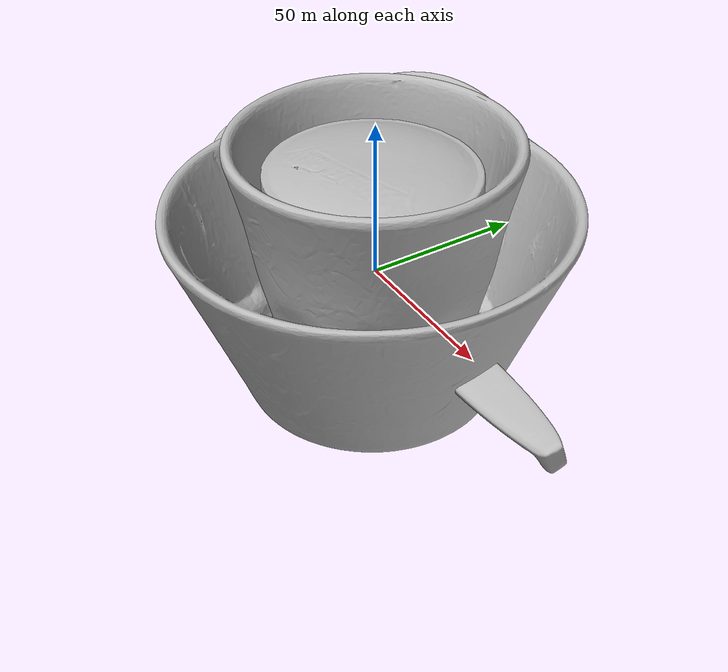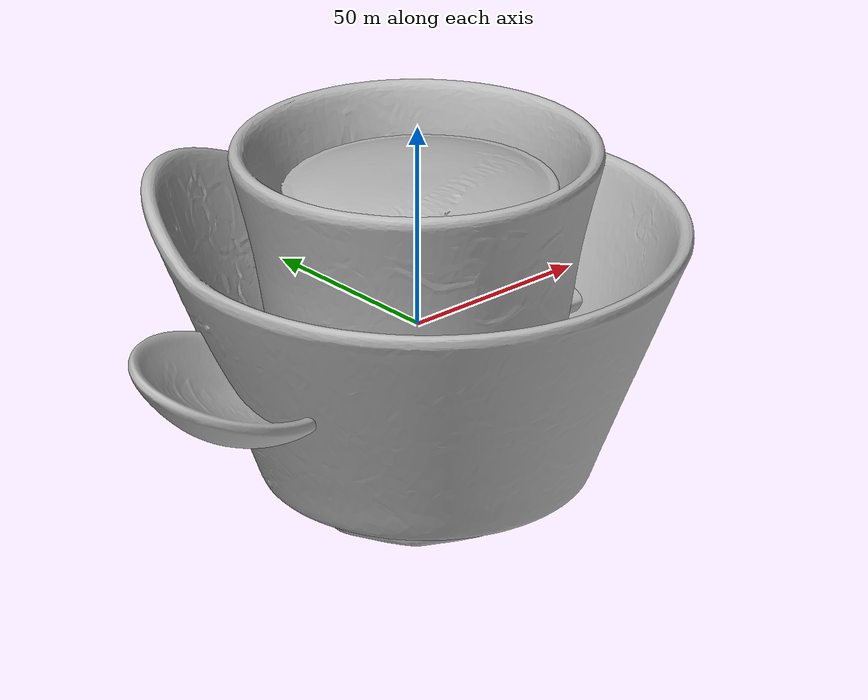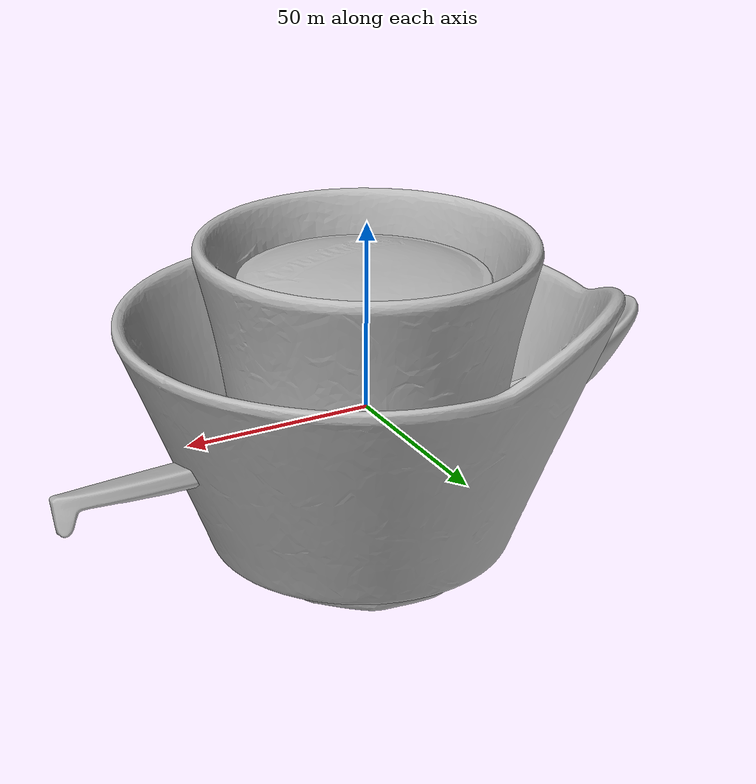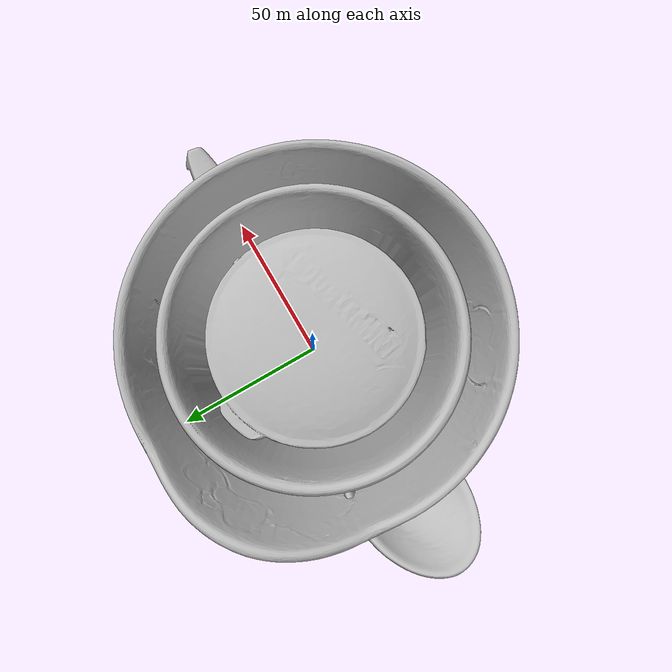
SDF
<sdf version="1.4">
 <world name="default">
  <light name="light1" type="point">
   <pose>0 0 1 0 0 0</pose>
   <diffuse>3 3 3 1</diffuse>
   <specular>3 3 3 1</specular>
  </light>
  <light name="light2" type="point">
   <pose>0 0.5 2 0 0 0</pose>
   <diffuse>1 1 1 1</diffuse>
   <specular>1 1 1 1</specular>
  </light>
  <light name="light3" type="point">
   <pose>0 0.5 2 0 0 0</pose>
   <diffuse>3 3 3 1</diffuse>
   <specular>3 3 3 1</specular>
  </light>
  <scene><ambient>0.7 0.7 0.7</ambient></scene>
  <model name="bottle1">
   <link name="link_bottle1">
    <collision name="default">
     <geometry>
      <mesh><uri>model://green_arrow/collision_meshes/collision.obj</uri><scale>1.0 1.0 1.0</scale></mesh>
     </geometry>
     <surface>
      <friction><ode><mu>0.5</mu><mu2>0.5</mu2></ode></friction>
      <contact><ode><max_vel>0</max_vel><min_depth>0.0001</min_depth><kp>1e8</kp></ode></contact>
     </surface>
    </collision>
    <visual name="default">
     <geometry>
      <mesh><uri>model://green_arrow/visual_meshes/visual.dae</uri><scale>1.0 1.0 1.0</scale></mesh>
     </geometry>
    </visual>
    <inertial>
     <mass>0.2764224410057068</mass>
     <pose>0.0005358477937988937 -0.0008270691032521427 0.002210969105362892 -0.06332196008274972 0.012988210902137025 0.674142157837799</pose>
     <inertia>
      <ixx>0.00020051825</ixx>
      <iyy>0.00020021446</iyy>
      <izz>0.00012947427</izz>
      <ixy>0</ixy>
      <ixz>0</ixz>
      <iyz>0</iyz>
     </inertia>
    </inertial>
   </link>
   <pose>0.07808393239974976 0.09369784593582153 0.03903084993362427 0.03851819745340693 0.0246286449842914 -0.4002130492378389</pose>
  </model>
  <model name="bottle2">
   <link name="link_bottle2">
    <collision name="default">
     <geometry>
      <mesh><uri>model://pure_zhen/collision_meshes/collision.obj</uri><scale>1.0 1.0 1.0</scale></mesh>
     </geometry>
     <surface>
      <friction><ode><mu>0.5</mu><mu2>0.5</mu2></ode></friction>
      <contact><ode><max_vel>0</max_vel><min_depth>0.0001</min_depth><kp>1e8</kp></ode></contact>
     </surface>
    </collision>
    <visual name="default">
     <geometry>
      <mesh><uri>model://pure_zhen/visual_meshes/visual.dae</uri><scale>1.0 1.0 1.0</scale></mesh>
     </geometry>
    </visual>
    <inertial>
     <mass>0.2372884750366211</mass>
     <pose>-8.582299778936431e-05 0.0002452346670906991 -0.0015797418309375644 -0.027641670524606855 0.005623077019143168 0.30585846122319743</pose>
     <inertia>
      <ixx>0.0007112664</ixx>
      <iyy>0.00071145216</iyy>
      <izz>7.51383e-05</izz>
      <ixy>0</ixy>
      <ixz>0</ixz>
      <iyz>0</iyz>
     </inertia>
    </inertial>
   </link>
   <pose>-0.07127492874860764 -0.06437238305807114 0.0919484943151474 0.019489126224325283 -0.016087972329416587 -2.917570027428488</pose>
  </model>
  <model name="silverware1">
   <link name="link_silverware1">
    <collision name="default">
     <geometry>
      <mesh><uri>model://doraemon_spoon/collision_meshes/collision.obj</uri><scale>1.0 1.0 1.0</scale></mesh>
     </geometry>
     <surface>
      <friction><ode><mu>0.5</mu><mu2>0.5</mu2></ode></friction>
      <contact><ode><max_vel>0</max_vel><min_depth>0.0001</min_depth><kp>1e8</kp></ode></contact>
     </surface>
    </collision>
    <visual name="default">
     <geometry>
      <mesh><uri>model://doraemon_spoon/visual_meshes/visual.dae</uri><scale>1.0 1.0 1.0</scale></mesh>
     </geometry>
    </visual>
    <inertial>
     <mass>0.020818473771214485</mass>
     <pose>-0.022165074944496155 -0.0006374582881107926 -0.0033325462136417627 -0.009147017253597407 0.0738041759980984 -0.014123826591698564</pose>
     <inertia>
      <ixx>1.6307007e-06</ixx>
      <iyy>4.631433e-05</iyy>
      <izz>4.7101734e-05</izz>
      <ixy>0</ixy>
      <ixz>0</ixz>
      <iyz>0</iyz>
     </inertia>
    </inertial>
   </link>
   <pose>0.16512373089790344 -0.13372467458248138 0.014739340171217918 0.2790015773960804 -0.010338982849688297 0.020927368989916203</pose>
  </model>
  <model name="stationery1">
   <link name="link_stationery1">
    <collision name="default">
     <geometry>
      <mesh><uri>model://correction_fuid/collision_meshes/collision.obj</uri><scale>1.0 1.0 1.0</scale></mesh>
     </geometry>
     <surface>
      <friction><ode><mu>0.5</mu><mu2>0.5</mu2></ode></friction>
      <contact><ode><max_vel>0</max_vel><min_depth>0.0001</min_depth><kp>1e8</kp></ode></contact>
     </surface>
    </collision>
    <visual name="default">
     <geometry>
      <mesh><uri>model://correction_fuid/visual_meshes/visual.dae</uri><scale>1.0 1.0 1.0</scale></mesh>
     </geometry>
    </visual>
    <inertial>
     <mass>0.03337494283914566</mass>
     <pose>-0.00012557735317386687 -0.0009722886024974287 -0.001618212671019137 -0.010846603423614418 0.019488389217657873 -0.01599245375892703</pose>
     <inertia>
      <ixx>3.2324202e-05</ixx>
      <iyy>1.9563013e-06</iyy>
      <izz>3.3165503e-05</izz>
      <ixy>0</ixy>
      <ixz>0</ixz>
      <iyz>0</iyz>
     </inertia>
    </inertial>
   </link>
   <pose>-0.001657317392528057 0.13437025249004364 0.009632827714085579 -0.0017271692322226421 -0.05616844654254053 -1.1873074141418436</pose>
  </model>
  <model name="bowl1">
   <link name="link_bowl1">
    <collision name="default">
     <geometry>
      <mesh><uri>model://hello_kitty_bowl/collision_meshes/collision.obj</uri><scale>1.0 1.0 1.0</scale></mesh>
     </geometry>
     <surface>
      <friction><ode><mu>0.5</mu><mu2>0.5</mu2></ode></friction>
      <contact><ode><max_vel>0</max_vel><min_depth>0.0001</min_depth><kp>1e8</kp></ode></contact>
     </surface>
    </collision>
    <visual name="default">
     <geometry>
      <mesh><uri>model://hello_kitty_bowl/visual_meshes/visual.dae</uri><scale>1.0 1.0 1.0</scale></mesh>
     </geometry>
    </visual>
    <inertial>
     <mass>0.11590971797704697</mass>
     <pose>-0.0015402117278426886 0.0004577837826218456 -0.0080512510612607 0.004152729053700843 -0.12227221811834889 0.04345084117661168</pose>
     <inertia>
      <ixx>0.00017210246</ixx>
      <iyy>0.00018182951</iyy>
      <izz>0.00025734986</izz>
      <ixy>0</ixy>
      <ixz>0</ixz>
      <iyz>0</iyz>
     </inertia>
    </inertial>
   </link>
   <pose>-0.022197330370545387 -0.32817748188972473 0.037412092089653015 0.00030464587419260056 -3.622311557996203e-05 2.159643253660854</pose>
  </model>
  <model name="cup1">
   <link name="link_cup1">
    <collision name="default">
     <geometry>
      <mesh><uri>model://hello_kitty_cup/collision_meshes/collision.obj</uri><scale>1.0 1.0 1.0</scale></mesh>
     </geometry>
     <surface>
      <friction><ode><mu>0.5</mu><mu2>0.5</mu2></ode></friction>
      <contact><ode><max_vel>0</max_vel><min_depth>0.0001</min_depth><kp>1e8</kp></ode></contact>
     </surface>
    </collision>
    <visual name="default">
     <geometry>
      <mesh><uri>model://hello_kitty_cup/visual_meshes/visual.dae</uri><scale>1.0 1.0 1.0</scale></mesh>
     </geometry>
    </visual>
    <inertial>
     <mass>0.06483803689479828</mass>
     <pose>0.00027251249412074685 0.0002795030304696411 0.003044978016987443 0.05779149237921037 0.007964744961503711 -0.020451485374324563</pose>
     <inertia>
      <ixx>8.928983e-05</ixx>
      <iyy>9.0285175e-05</iyy>
      <izz>7.52867e-05</izz>
      <ixy>0</ixy>
      <ixz>0</ixz>
      <iyz>0</iyz>
     </inertia>
    </inertial>
   </link>
   <pose>0.2534012496471405 0.07390095293521881 0.046214036643505096 -0.005713852550195458 0.010789798383679852 2.8365146252078492</pose>
  </model>
  <model name="plate1">
   <link name="link_plate1">
    <collision name="default">
     <geometry>
      <mesh><uri>model://hello_kitty_plate/collision_meshes/collision.obj</uri><scale>1.0 1.0 1.0</scale></mesh>
     </geometry>
     <surface>
      <friction><ode><mu>0.5</mu><mu2>0.5</mu2></ode></friction>
      <contact><ode><max_vel>0</max_vel><min_depth>0.0001</min_depth><kp>1e8</kp></ode></contact>
     </surface>
    </collision>
    <visual name="default">
     <geometry>
      <mesh><uri>model://hello_kitty_plate/visual_meshes/visual.dae</uri><scale>1.0 1.0 1.0</scale></mesh>
     </geometry>
    </visual>
    <inertial>
     <mass>0.035439908504486084</mass>
     <pose>0.007314295507967472 0.00028937257593497634 -0.0027947179041802883 -0.00010432032854243346 -0.007054443681780748 -0.014449040989024118</pose>
     <inertia>
      <ixx>6.833875e-05</ixx>
      <iyy>0.00012897578</iyy>
      <izz>0.00019583687</izz>
      <ixy>0</ixy>
      <ixz>0</ixz>
      <iyz>0</iyz>
     </inertia>
    </inertial>
   </link>
   <pose>0.12873029708862305 -0.29374659061431885 0.00829144287854433 0.0004654550075107718 0.004172980126258997 -1.4394077642110947</pose>
  </model>
  <model name="box4">
   <link name="link_box4">
    <collision name="default">
     <geometry>
      <mesh><uri>model://wooden_puzzle1/collision_meshes/collision.obj</uri><scale>1.0 1.0 1.0</scale></mesh>
     </geometry>
     <surface>
      <friction><ode><mu>0.5</mu><mu2>0.5</mu2></ode></friction>
      <contact><ode><max_vel>0</max_vel><min_depth>0.0001</min_depth><kp>1e8</kp></ode></contact>
     </surface>
    </collision>
    <visual name="default">
     <geometry>
      <mesh><uri>model://wooden_puzzle1/visual_meshes/visual.dae</uri><scale>1.0 1.0 1.0</scale></mesh>
     </geometry>
    </visual>
    <inertial>
     <mass>0.022725893184542656</mass>
     <pose>-0.00017350679263472557 7.972260937094688e-05 -9.191554272547364e-05 -0.07784633272711022 -0.26361483493671084 -0.5528696267966513</pose>
     <inertia>
      <ixx>4.2877546e-06</ixx>
      <iyy>4.205213e-06</iyy>
      <izz>4.2553816e-06</izz>
      <ixy>0</ixy>
      <ixz>0</ixz>
      <iyz>0</iyz>
     </inertia>
    </inertial>
   </link>
   <pose>0.1850648671388626 0.18599845468997955 0.01680198311805725 0.010517256536346256 -0.009459097821555303 0.0057844457718708425</pose>
  </model>
  <physics type="ode">
   <max_contacts>50</max_contacts>
   <ode>
    <solver><type>quick</type><iters>75</iters></solver>
    <constraints>
     <contact_max_correcting_vel>0</contact_max_correcting_vel>
     <contact_surface_layer>0</contact_surface_layer>
    </constraints>
   </ode>
  </physics>
 </world>
</sdf>
